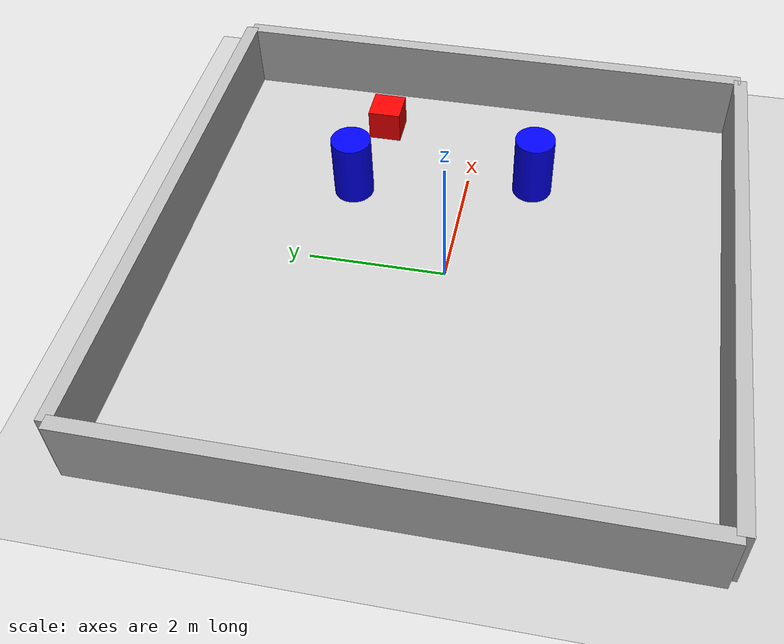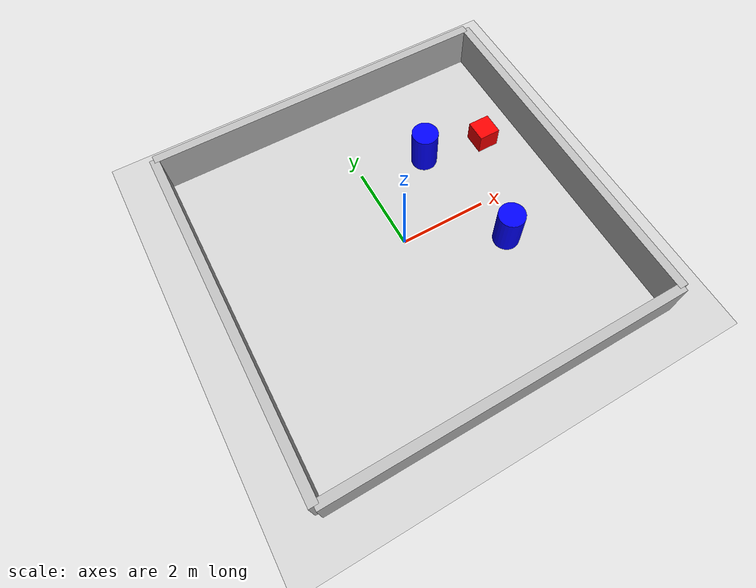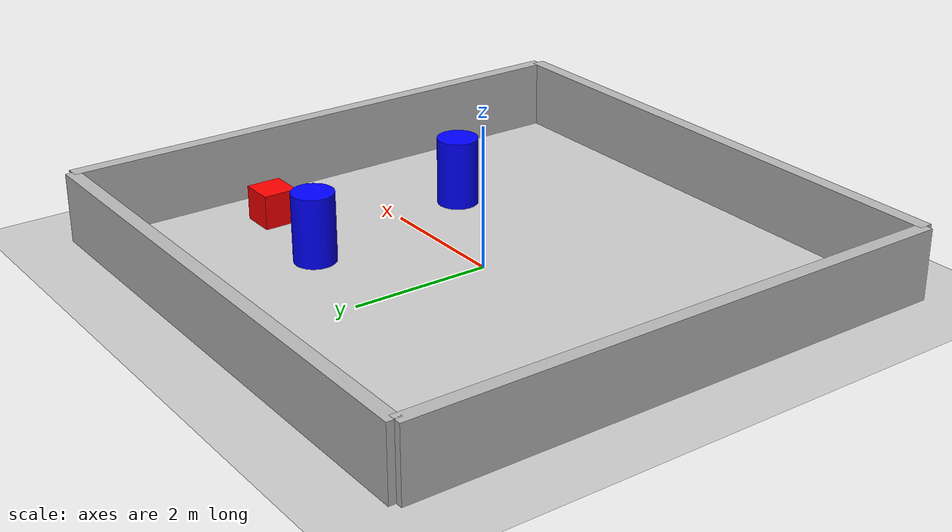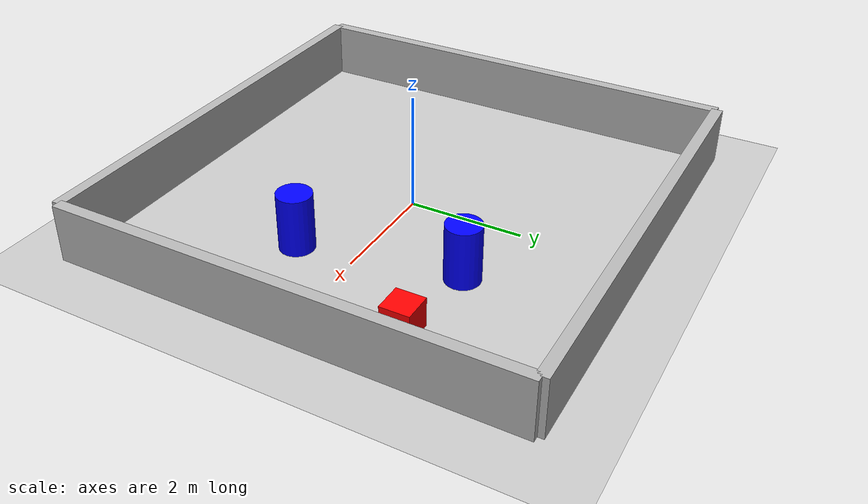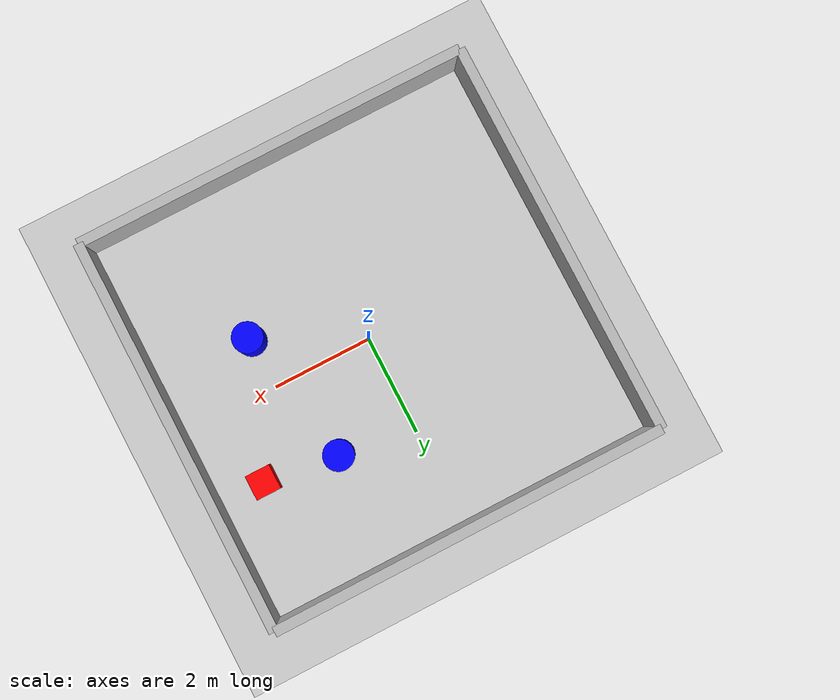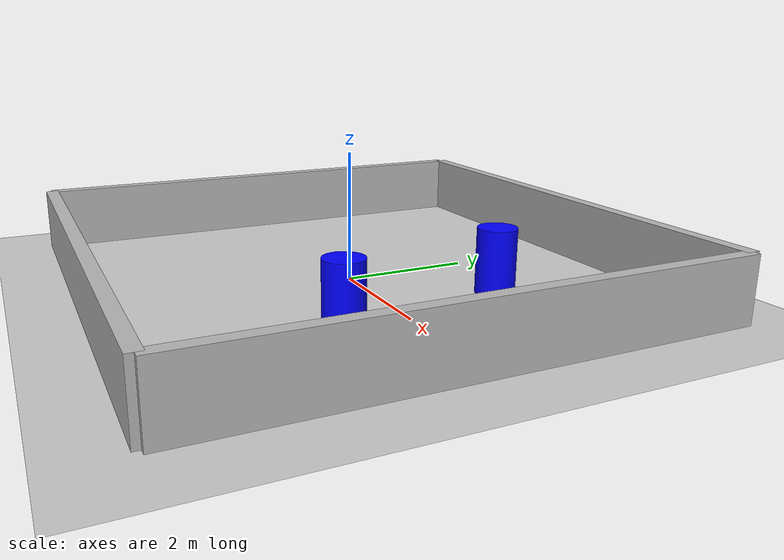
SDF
<?xml version="1.0" ?>
<sdf version="1.6">
  <world name="meu_armazem">
    <light type="directional" name="sun">
      <cast_shadows>true</cast_shadows> <pose>0 0 10 0 0 0</pose> <diffuse>0.8 0.8 0.8 1</diffuse> <specular>0.2 0.2 0.2 1</specular>
      <attenuation> <range>1000</range> <constant>0.9</constant> <linear>0.01</linear> <quadratic>0.001</quadratic> </attenuation>
      <direction>-0.5 0.1 -0.9</direction>
    </light>
    <model name="ground_plane">
      <static>true</static>
      <link name="link">
        <collision name="collision"> <geometry> <plane> <normal>0 0 1</normal> <size>15 15</size> </plane> </geometry> </collision>
        <visual name="visual"> <geometry> <plane> <normal>0 0 1</normal> <size>15 15</size> </plane> </geometry> <material> <script> <uri>file://media/materials/scripts/gazebo.material</uri> <name>Gazebo/Grey</name> </script> </material> </visual>
      </link>
    </model>

    <model name='walls_armazem'>
      <static>true</static>
      <pose>0 0 0 0 0 0</pose>
      <link name='Wall_Norte'> <pose>0 4.0 0.5 0 0 0</pose> <visual name='visual'> <geometry> <box> <size>8 0.2 1</size> </box> </geometry> </visual> <collision name='collision'> <geometry> <box> <size>8 0.2 1</size> </box> </geometry> </collision> </link>
      <link name='Wall_Sul'> <pose>0 -4.0 0.5 0 0 0</pose> <visual name='visual'> <geometry> <box> <size>8 0.2 1</size> </box> </geometry> </visual> <collision name='collision'> <geometry> <box> <size>8 0.2 1</size> </box> </geometry> </collision> </link>
      <link name='Wall_Leste'> <pose>4.0 0 0.5 0 0 1.57</pose> <visual name='visual'> <geometry> <box> <size>8 0.2 1</size> </box> </geometry> </visual> <collision name='collision'> <geometry> <box> <size>8 0.2 1</size> </box> </geometry> </collision> </link>
      <link name='Wall_Oeste'> <pose>-4.0 0 0.5 0 0 1.57</pose> <visual name='visual'> <geometry> <box> <size>8 0.2 1</size> </box> </geometry> </visual> <collision name='collision'> <geometry> <box> <size>8 0.2 1</size> </box> </geometry> </collision> </link>
    </model>

    <model name="encomenda">
      <static>true</static> <pose>3.0 1.5 0.25 0 0 0</pose>
      <link name="link"> <visual name="visual"> <geometry><box><size>0.5 0.5 0.5</size></box></geometry> <material><ambient>1 0 0 1</ambient><diffuse>1 0 0 1</diffuse></material> </visual>
      <collision name="collision"> <geometry><box><size>0.5 0.5 0.5</size></box></geometry> </collision> </link>
    </model>
    <model name="obstaculo_azul_1">
        <static>true</static> <pose>1.5 1.7 0.5 0 0 0</pose>
        <link name="link"> <visual name="visual"> <geometry><cylinder><radius>0.3</radius><length>1.0</length></cylinder></geometry> <material><ambient>0 0 1 1</ambient><diffuse>0 0 1 1</diffuse></material> </visual>
        <collision name="collision"> <geometry><cylinder><radius>0.3</radius><length>1.0</length></cylinder></geometry> </collision> </link>
    </model>
    <model name="obstaculo_azul_2">
        <static>true</static> <pose>2.0 -1.0 0.5 0 0 0</pose>
        <link name="link"> <visual name="visual"> <geometry><cylinder><radius>0.3</radius><length>1.0</length></cylinder></geometry> <material><ambient>0 0 1 1</ambient><diffuse>0 0 1 1</diffuse></material> </visual>
        <collision name="collision"> <geometry><cylinder><radius>0.3</radius><length>1.0</length></cylinder></geometry> </collision> </link>
    </model>
  </world>
</sdf>
